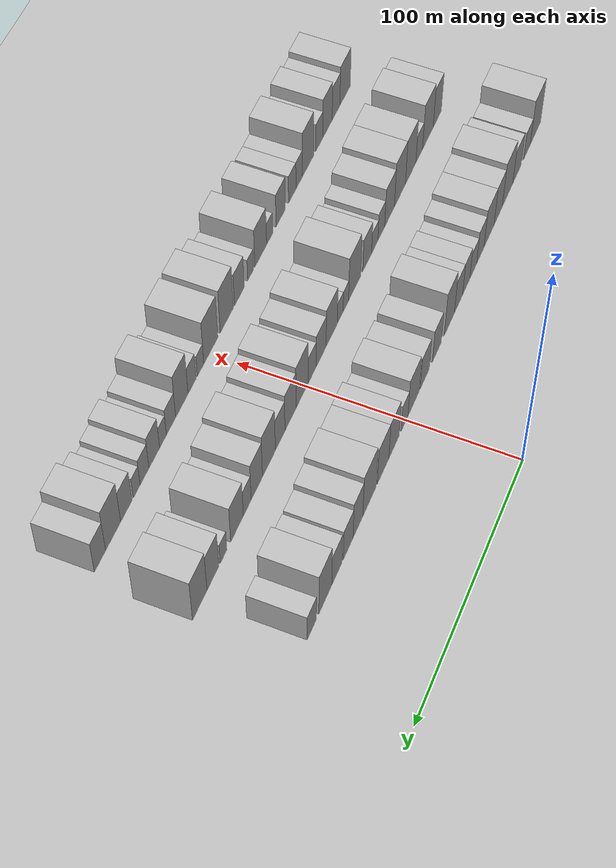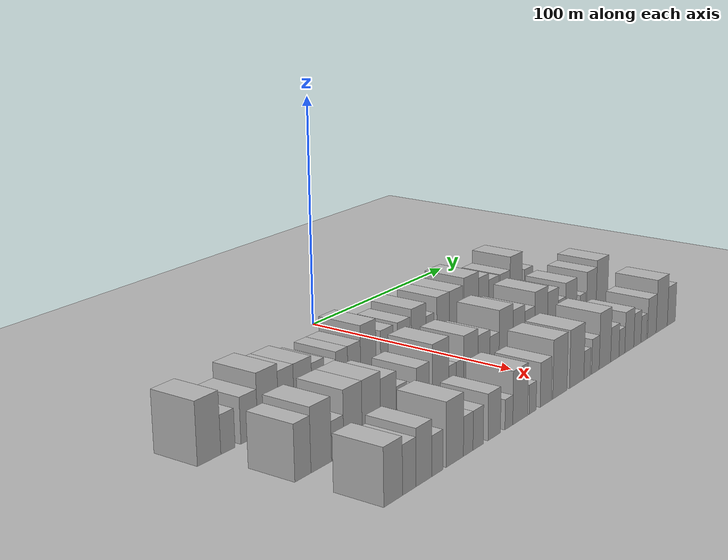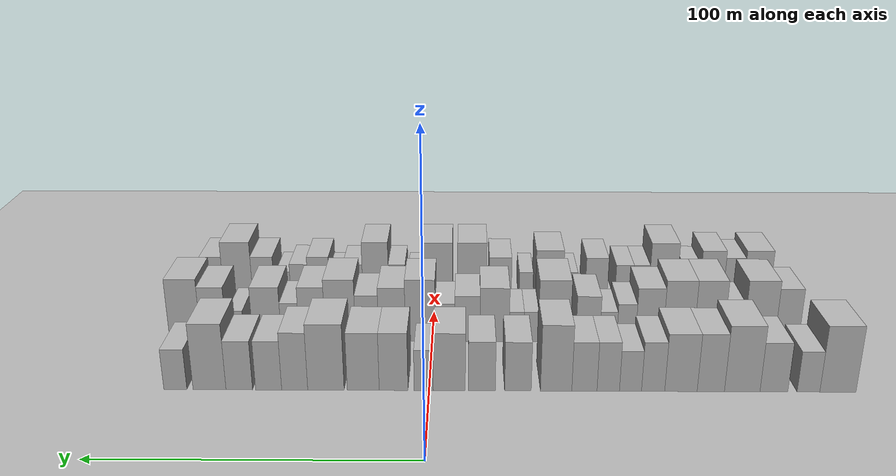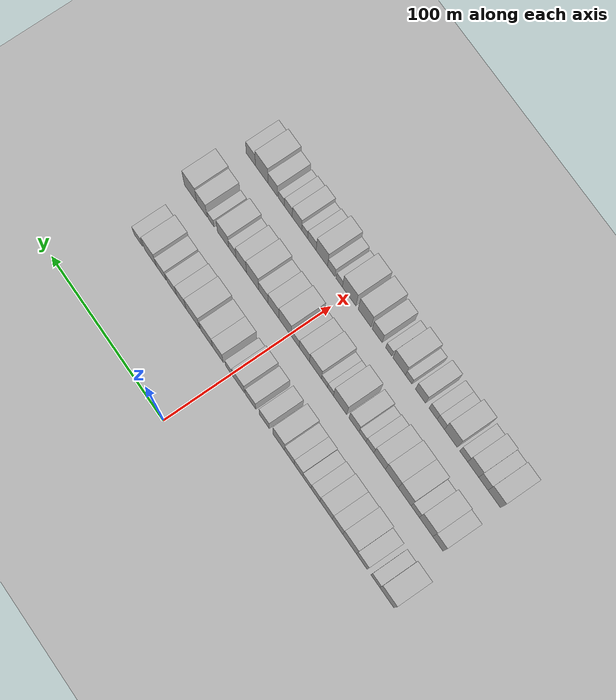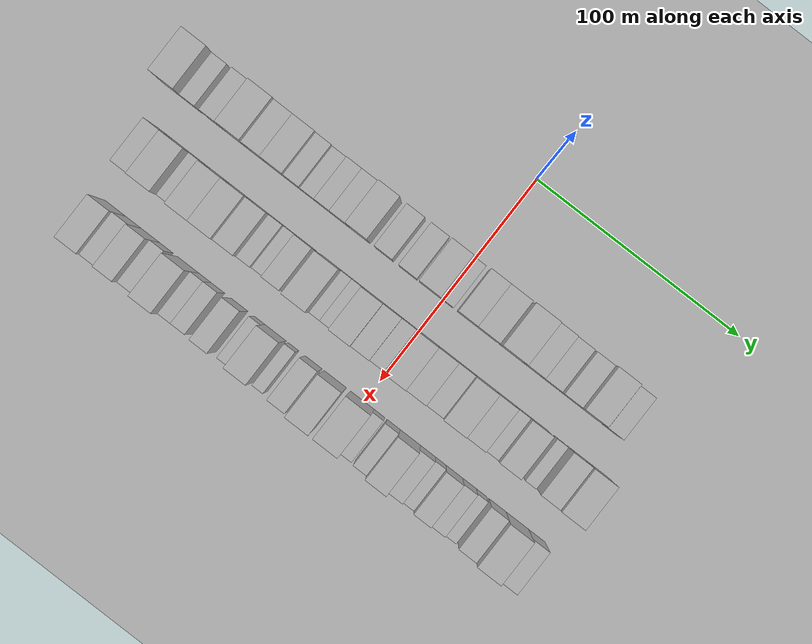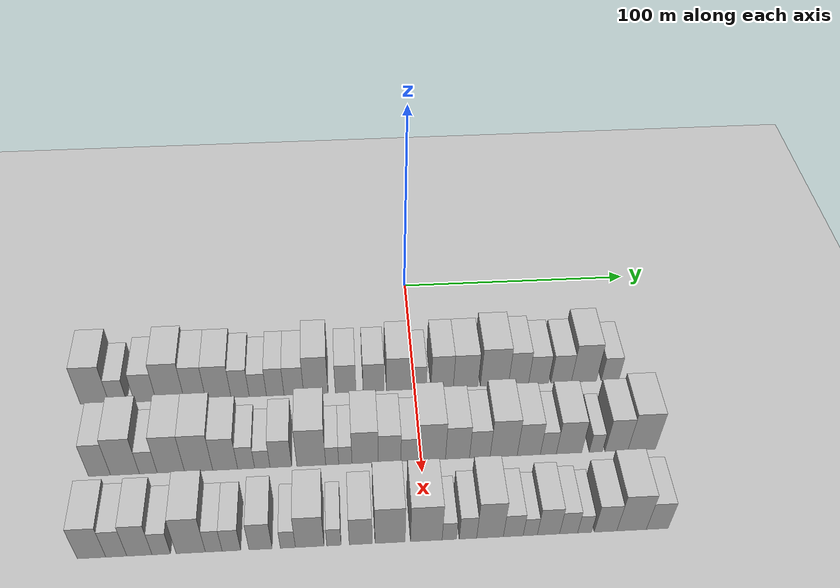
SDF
<sdf version="1.6">
 <world name="default">
  <include><name>ground_plane_1</name><uri>model://HANNAS_ground_plane</uri></include>
  <include>
   <name>ground_plane_2</name>
   <uri>model://HANNAS_ground_plane</uri>
   <pose>100 0 0  0 0 0</pose>
  </include>
  <model name="building_26">
   <static>1</static>
   <pose>50.0000 -131.7145 0 0.000000 0.000000 0.000000</pose>
   <link name="link">
    <pose>0 0 12.00 0 0 0</pose>
    <collision name="collision"><geometry><box><size>20.0000 11.6438 24.0000</size></box></geometry></collision>
    <visual name="visual">
     <cast_shadows>0</cast_shadows>
     <geometry><box><size>20.0000 11.6438 24.0000</size></box></geometry>
     <material>
      <script>
       <uri>model://HANNAS_wall/materials/scripts</uri>
       <uri>model://HANNAS_wall/materials/textures</uri>
       <name>vrc/HANNAS_wall</name>
      </script>
     </material>
    </visual>
   </link>
  </model>
  <model name="building_27">
   <static>1</static>
   <pose>50.0000 -122.2554 0 0.000000 0.000000 0.000000</pose>
   <link name="link">
    <pose>0 0 7.50 0 0 0</pose>
    <collision name="collision"><geometry><box><size>20.0000 7.2743 15.0000</size></box></geometry></collision>
    <visual name="visual">
     <cast_shadows>0</cast_shadows>
     <geometry><box><size>20.0000 7.2743 15.0000</size></box></geometry>
     <material>
      <script>
       <uri>model://HANNAS_wall/materials/scripts</uri>
       <uri>model://HANNAS_wall/materials/textures</uri>
       <name>vrc/HANNAS_wall</name>
      </script>
     </material>
    </visual>
   </link>
  </model>
  <model name="building_28">
   <static>1</static>
   <pose>50.0000 -111.1314 0 0.000000 0.000000 0.000000</pose>
   <link name="link">
    <pose>0 0 9.00 0 0 0</pose>
    <collision name="collision"><geometry><box><size>20.0000 8.9738 18.0000</size></box></geometry></collision>
    <visual name="visual">
     <cast_shadows>0</cast_shadows>
     <geometry><box><size>20.0000 8.9738 18.0000</size></box></geometry>
     <material>
      <script>
       <uri>model://HANNAS_wall/materials/scripts</uri>
       <uri>model://HANNAS_wall/materials/textures</uri>
       <name>vrc/HANNAS_wall</name>
      </script>
     </material>
    </visual>
   </link>
  </model>
  <model name="building_29">
   <static>1</static>
   <pose>50.0000 -100.9214 0 0.000000 0.000000 0.000000</pose>
   <link name="link">
    <pose>0 0 12.00 0 0 0</pose>
    <collision name="collision"><geometry><box><size>20.0000 11.4462 24.0000</size></box></geometry></collision>
    <visual name="visual">
     <cast_shadows>0</cast_shadows>
     <geometry><box><size>20.0000 11.4462 24.0000</size></box></geometry>
     <material>
      <script>
       <uri>model://HANNAS_wall/materials/scripts</uri>
       <uri>model://HANNAS_wall/materials/textures</uri>
       <name>vrc/HANNAS_wall</name>
      </script>
     </material>
    </visual>
   </link>
  </model>
  <model name="building_30">
   <static>1</static>
   <pose>50.0000 -90.8054 0 0.000000 0.000000 0.000000</pose>
   <link name="link">
    <pose>0 0 10.50 0 0 0</pose>
    <collision name="collision"><geometry><box><size>20.0000 8.7860 21.0000</size></box></geometry></collision>
    <visual name="visual">
     <cast_shadows>0</cast_shadows>
     <geometry><box><size>20.0000 8.7860 21.0000</size></box></geometry>
     <material>
      <script>
       <uri>model://HANNAS_wall/materials/scripts</uri>
       <uri>model://HANNAS_wall/materials/textures</uri>
       <name>vrc/HANNAS_wall</name>
      </script>
     </material>
    </visual>
   </link>
  </model>
  <model name="building_31">
   <static>1</static>
   <pose>50.0000 -81.1889 0 0.000000 0.000000 0.000000</pose>
   <link name="link">
    <pose>0 0 10.50 0 0 0</pose>
    <collision name="collision"><geometry><box><size>20.0000 10.4469 21.0000</size></box></geometry></collision>
    <visual name="visual">
     <cast_shadows>0</cast_shadows>
     <geometry><box><size>20.0000 10.4469 21.0000</size></box></geometry>
     <material>
      <script>
       <uri>model://HANNAS_wall/materials/scripts</uri>
       <uri>model://HANNAS_wall/materials/textures</uri>
       <name>vrc/HANNAS_wall</name>
      </script>
     </material>
    </visual>
   </link>
  </model>
  <model name="building_32">
   <static>1</static>
   <pose>50.0000 -72.2218 0 0.000000 0.000000 0.000000</pose>
   <link name="link">
    <pose>0 0 9.00 0 0 0</pose>
    <collision name="collision"><geometry><box><size>20.0000 7.4873 18.0000</size></box></geometry></collision>
    <visual name="visual">
     <cast_shadows>0</cast_shadows>
     <geometry><box><size>20.0000 7.4873 18.0000</size></box></geometry>
     <material>
      <script>
       <uri>model://HANNAS_wall/materials/scripts</uri>
       <uri>model://HANNAS_wall/materials/textures</uri>
       <name>vrc/HANNAS_wall</name>
      </script>
     </material>
    </visual>
   </link>
  </model>
  <model name="building_33">
   <static>1</static>
   <pose>50.0000 -64.9223 0 0.000000 0.000000 0.000000</pose>
   <link name="link">
    <pose>0 0 7.50 0 0 0</pose>
    <collision name="collision"><geometry><box><size>20.0000 7.1118 15.0000</size></box></geometry></collision>
    <visual name="visual">
     <cast_shadows>0</cast_shadows>
     <geometry><box><size>20.0000 7.1118 15.0000</size></box></geometry>
     <material>
      <script>
       <uri>model://HANNAS_wall/materials/scripts</uri>
       <uri>model://HANNAS_wall/materials/textures</uri>
       <name>vrc/HANNAS_wall</name>
      </script>
     </material>
    </visual>
   </link>
  </model>
  <model name="building_34">
   <static>1</static>
   <pose>50.0000 -57.7471 0 0.000000 0.000000 0.000000</pose>
   <link name="link">
    <pose>0 0 9.00 0 0 0</pose>
    <collision name="collision"><geometry><box><size>20.0000 7.2385 18.0000</size></box></geometry></collision>
    <visual name="visual">
     <cast_shadows>0</cast_shadows>
     <geometry><box><size>20.0000 7.2385 18.0000</size></box></geometry>
     <material>
      <script>
       <uri>model://HANNAS_wall/materials/scripts</uri>
       <uri>model://HANNAS_wall/materials/textures</uri>
       <name>vrc/HANNAS_wall</name>
      </script>
     </material>
    </visual>
   </link>
  </model>
  <model name="building_35">
   <static>1</static>
   <pose>50.0000 -50.0649 0 0.000000 0.000000 0.000000</pose>
   <link name="link">
    <pose>0 0 9.00 0 0 0</pose>
    <collision name="collision"><geometry><box><size>20.0000 8.1259 18.0000</size></box></geometry></collision>
    <visual name="visual">
     <cast_shadows>0</cast_shadows>
     <geometry><box><size>20.0000 8.1259 18.0000</size></box></geometry>
     <material>
      <script>
       <uri>model://HANNAS_wall/materials/scripts</uri>
       <uri>model://HANNAS_wall/materials/textures</uri>
       <name>vrc/HANNAS_wall</name>
      </script>
     </material>
    </visual>
   </link>
  </model>
  <model name="building_36">
   <static>1</static>
   <pose>50.0000 -40.9510 0 0.000000 0.000000 0.000000</pose>
   <link name="link">
    <pose>0 0 12.00 0 0 0</pose>
    <collision name="collision"><geometry><box><size>20.0000 10.1020 24.0000</size></box></geometry></collision>
    <visual name="visual">
     <cast_shadows>0</cast_shadows>
     <geometry><box><size>20.0000 10.1020 24.0000</size></box></geometry>
     <material>
      <script>
       <uri>model://HANNAS_wall/materials/scripts</uri>
       <uri>model://HANNAS_wall/materials/textures</uri>
       <name>vrc/HANNAS_wall</name>
      </script>
     </material>
    </visual>
   </link>
  </model>
  <model name="building_37">
   <static>1</static>
   <pose>50.0000 -28.6230 0 0.000000 0.000000 0.000000</pose>
   <link name="link">
    <pose>0 0 9.00 0 0 0</pose>
    <collision name="collision"><geometry><box><size>20.0000 8.5541 18.0000</size></box></geometry></collision>
    <visual name="visual">
     <cast_shadows>0</cast_shadows>
     <geometry><box><size>20.0000 8.5541 18.0000</size></box></geometry>
     <material>
      <script>
       <uri>model://HANNAS_wall/materials/scripts</uri>
       <uri>model://HANNAS_wall/materials/textures</uri>
       <name>vrc/HANNAS_wall</name>
      </script>
     </material>
    </visual>
   </link>
  </model>
  <model name="building_38">
   <static>1</static>
   <pose>50.0000 -16.9877 0 0.000000 0.000000 0.000000</pose>
   <link name="link">
    <pose>0 0 9.00 0 0 0</pose>
    <collision name="collision"><geometry><box><size>20.0000 8.7164 18.0000</size></box></geometry></collision>
    <visual name="visual">
     <cast_shadows>0</cast_shadows>
     <geometry><box><size>20.0000 8.7164 18.0000</size></box></geometry>
     <material>
      <script>
       <uri>model://HANNAS_wall/materials/scripts</uri>
       <uri>model://HANNAS_wall/materials/textures</uri>
       <name>vrc/HANNAS_wall</name>
      </script>
     </material>
    </visual>
   </link>
  </model>
  <model name="building_39">
   <static>1</static>
   <pose>50.0000 -6.4514 0 0.000000 0.000000 0.000000</pose>
   <link name="link">
    <pose>0 0 10.50 0 0 0</pose>
    <collision name="collision"><geometry><box><size>20.0000 10.3563 21.0000</size></box></geometry></collision>
    <visual name="visual">
     <cast_shadows>0</cast_shadows>
     <geometry><box><size>20.0000 10.3563 21.0000</size></box></geometry>
     <material>
      <script>
       <uri>model://HANNAS_wall/materials/scripts</uri>
       <uri>model://HANNAS_wall/materials/textures</uri>
       <name>vrc/HANNAS_wall</name>
      </script>
     </material>
    </visual>
   </link>
  </model>
  <model name="building_40">
   <static>1</static>
   <pose>50.0000 1.8156 0 0.000000 0.000000 0.000000</pose>
   <link name="link">
    <pose>0 0 7.50 0 0 0</pose>
    <collision name="collision"><geometry><box><size>20.0000 6.1777 15.0000</size></box></geometry></collision>
    <visual name="visual">
     <cast_shadows>0</cast_shadows>
     <geometry><box><size>20.0000 6.1777 15.0000</size></box></geometry>
     <material>
      <script>
       <uri>model://HANNAS_wall/materials/scripts</uri>
       <uri>model://HANNAS_wall/materials/textures</uri>
       <name>vrc/HANNAS_wall</name>
      </script>
     </material>
    </visual>
   </link>
  </model>
  <model name="building_41">
   <static>1</static>
   <pose>50.0000 11.5562 0 0.000000 0.000000 0.000000</pose>
   <link name="link">
    <pose>0 0 10.50 0 0 0</pose>
    <collision name="collision"><geometry><box><size>20.0000 9.3035 21.0000</size></box></geometry></collision>
    <visual name="visual">
     <cast_shadows>0</cast_shadows>
     <geometry><box><size>20.0000 9.3035 21.0000</size></box></geometry>
     <material>
      <script>
       <uri>model://HANNAS_wall/materials/scripts</uri>
       <uri>model://HANNAS_wall/materials/textures</uri>
       <name>vrc/HANNAS_wall</name>
      </script>
     </material>
    </visual>
   </link>
  </model>
  <model name="building_42">
   <static>1</static>
   <pose>50.0000 21.3764 0 0.000000 0.000000 0.000000</pose>
   <link name="link">
    <pose>0 0 10.50 0 0 0</pose>
    <collision name="collision"><geometry><box><size>20.0000 10.3369 21.0000</size></box></geometry></collision>
    <visual name="visual">
     <cast_shadows>0</cast_shadows>
     <geometry><box><size>20.0000 10.3369 21.0000</size></box></geometry>
     <material>
      <script>
       <uri>model://HANNAS_wall/materials/scripts</uri>
       <uri>model://HANNAS_wall/materials/textures</uri>
       <name>vrc/HANNAS_wall</name>
      </script>
     </material>
    </visual>
   </link>
  </model>
  <model name="building_43">
   <static>1</static>
   <pose>50.0000 33.4431 0 0.000000 0.000000 0.000000</pose>
   <link name="link">
    <pose>0 0 12.00 0 0 0</pose>
    <collision name="collision"><geometry><box><size>20.0000 11.7965 24.0000</size></box></geometry></collision>
    <visual name="visual">
     <cast_shadows>0</cast_shadows>
     <geometry><box><size>20.0000 11.7965 24.0000</size></box></geometry>
     <material>
      <script>
       <uri>model://HANNAS_wall/materials/scripts</uri>
       <uri>model://HANNAS_wall/materials/textures</uri>
       <name>vrc/HANNAS_wall</name>
      </script>
     </material>
    </visual>
   </link>
  </model>
  <model name="building_44">
   <static>1</static>
   <pose>50.0000 43.5559 0 0.000000 0.000000 0.000000</pose>
   <link name="link">
    <pose>0 0 10.50 0 0 0</pose>
    <collision name="collision"><geometry><box><size>20.0000 8.4291 21.0000</size></box></geometry></collision>
    <visual name="visual">
     <cast_shadows>0</cast_shadows>
     <geometry><box><size>20.0000 8.4291 21.0000</size></box></geometry>
     <material>
      <script>
       <uri>model://HANNAS_wall/materials/scripts</uri>
       <uri>model://HANNAS_wall/materials/textures</uri>
       <name>vrc/HANNAS_wall</name>
      </script>
     </material>
    </visual>
   </link>
  </model>
  <model name="building_45">
   <static>1</static>
   <pose>50.0000 51.9869 0 0.000000 0.000000 0.000000</pose>
   <link name="link">
    <pose>0 0 9.00 0 0 0</pose>
    <collision name="collision"><geometry><box><size>20.0000 8.4329 18.0000</size></box></geometry></collision>
    <visual name="visual">
     <cast_shadows>0</cast_shadows>
     <geometry><box><size>20.0000 8.4329 18.0000</size></box></geometry>
     <material>
      <script>
       <uri>model://HANNAS_wall/materials/scripts</uri>
       <uri>model://HANNAS_wall/materials/textures</uri>
       <name>vrc/HANNAS_wall</name>
      </script>
     </material>
    </visual>
   </link>
  </model>
  <model name="building_46">
   <static>1</static>
   <pose>50.0000 61.5077 0 0.000000 0.000000 0.000000</pose>
   <link name="link">
    <pose>0 0 9.00 0 0 0</pose>
    <collision name="collision"><geometry><box><size>20.0000 8.6087 18.0000</size></box></geometry></collision>
    <visual name="visual">
     <cast_shadows>0</cast_shadows>
     <geometry><box><size>20.0000 8.6087 18.0000</size></box></geometry>
     <material>
      <script>
       <uri>model://HANNAS_wall/materials/scripts</uri>
       <uri>model://HANNAS_wall/materials/textures</uri>
       <name>vrc/HANNAS_wall</name>
      </script>
     </material>
    </visual>
   </link>
  </model>
  <model name="building_47">
   <static>1</static>
   <pose>50.0000 71.1475 0 0.000000 0.000000 0.000000</pose>
   <link name="link">
    <pose>0 0 12.00 0 0 0</pose>
    <collision name="collision"><geometry><box><size>20.0000 10.6708 24.0000</size></box></geometry></collision>
    <visual name="visual">
     <cast_shadows>0</cast_shadows>
     <geometry><box><size>20.0000 10.6708 24.0000</size></box></geometry>
     <material>
      <script>
       <uri>model://HANNAS_wall/materials/scripts</uri>
       <uri>model://HANNAS_wall/materials/textures</uri>
       <name>vrc/HANNAS_wall</name>
      </script>
     </material>
    </visual>
   </link>
  </model>
  <model name="building_48">
   <static>1</static>
   <pose>50.0000 82.2222 0 0.000000 0.000000 0.000000</pose>
   <link name="link">
    <pose>0 0 7.50 0 0 0</pose>
    <collision name="collision"><geometry><box><size>20.0000 7.4786 15.0000</size></box></geometry></collision>
    <visual name="visual">
     <cast_shadows>0</cast_shadows>
     <geometry><box><size>20.0000 7.4786 15.0000</size></box></geometry>
     <material>
      <script>
       <uri>model://HANNAS_wall/materials/scripts</uri>
       <uri>model://HANNAS_wall/materials/textures</uri>
       <name>vrc/HANNAS_wall</name>
      </script>
     </material>
    </visual>
   </link>
  </model>
  <model name="building_103">
   <static>1</static>
   <pose>85.0000 -124.8786 0 0.000000 0.000000 0.000000</pose>
   <link name="link">
    <pose>0 0 10.50 0 0 0</pose>
    <collision name="collision"><geometry><box><size>20.0000 8.4482 21.0000</size></box></geometry></collision>
    <visual name="visual">
     <cast_shadows>0</cast_shadows>
     <geometry><box><size>20.0000 8.4482 21.0000</size></box></geometry>
     <material>
      <script>
       <uri>model://HANNAS_wall/materials/scripts</uri>
       <uri>model://HANNAS_wall/materials/textures</uri>
       <name>vrc/HANNAS_wall</name>
      </script>
     </material>
    </visual>
   </link>
  </model>
  <model name="building_104">
   <static>1</static>
   <pose>85.0000 -115.1177 0 0.000000 0.000000 0.000000</pose>
   <link name="link">
    <pose>0 0 12.00 0 0 0</pose>
    <collision name="collision"><geometry><box><size>20.0000 11.0736 24.0000</size></box></geometry></collision>
    <visual name="visual">
     <cast_shadows>0</cast_shadows>
     <geometry><box><size>20.0000 11.0736 24.0000</size></box></geometry>
     <material>
      <script>
       <uri>model://HANNAS_wall/materials/scripts</uri>
       <uri>model://HANNAS_wall/materials/textures</uri>
       <name>vrc/HANNAS_wall</name>
      </script>
     </material>
    </visual>
   </link>
  </model>
  <model name="building_105">
   <static>1</static>
   <pose>85.0000 -106.1394 0 0.000000 0.000000 0.000000</pose>
   <link name="link">
    <pose>0 0 7.50 0 0 0</pose>
    <collision name="collision"><geometry><box><size>20.0000 6.8830 15.0000</size></box></geometry></collision>
    <visual name="visual">
     <cast_shadows>0</cast_shadows>
     <geometry><box><size>20.0000 6.8830 15.0000</size></box></geometry>
     <material>
      <script>
       <uri>model://HANNAS_wall/materials/scripts</uri>
       <uri>model://HANNAS_wall/materials/textures</uri>
       <name>vrc/HANNAS_wall</name>
      </script>
     </material>
    </visual>
   </link>
  </model>
  <model name="building_106">
   <static>1</static>
   <pose>85.0000 -97.4336 0 0.000000 0.000000 0.000000</pose>
   <link name="link">
    <pose>0 0 12.00 0 0 0</pose>
    <collision name="collision"><geometry><box><size>20.0000 10.5285 24.0000</size></box></geometry></collision>
    <visual name="visual">
     <cast_shadows>0</cast_shadows>
     <geometry><box><size>20.0000 10.5285 24.0000</size></box></geometry>
     <material>
      <script>
       <uri>model://HANNAS_wall/materials/scripts</uri>
       <uri>model://HANNAS_wall/materials/textures</uri>
       <name>vrc/HANNAS_wall</name>
      </script>
     </material>
    </visual>
   </link>
  </model>
  <model name="building_107">
   <static>1</static>
   <pose>85.0000 -86.7280 0 0.000000 0.000000 0.000000</pose>
   <link name="link">
    <pose>0 0 12.00 0 0 0</pose>
    <collision name="collision"><geometry><box><size>20.0000 10.8827 24.0000</size></box></geometry></collision>
    <visual name="visual">
     <cast_shadows>0</cast_shadows>
     <geometry><box><size>20.0000 10.8827 24.0000</size></box></geometry>
     <material>
      <script>
       <uri>model://HANNAS_wall/materials/scripts</uri>
       <uri>model://HANNAS_wall/materials/textures</uri>
       <name>vrc/HANNAS_wall</name>
      </script>
     </material>
    </visual>
   </link>
  </model>
  <model name="building_108">
   <static>1</static>
   <pose>85.0000 -76.4535 0 0.000000 0.000000 0.000000</pose>
   <link name="link">
    <pose>0 0 10.50 0 0 0</pose>
    <collision name="collision"><geometry><box><size>20.0000 9.6663 21.0000</size></box></geometry></collision>
    <visual name="visual">
     <cast_shadows>0</cast_shadows>
     <geometry><box><size>20.0000 9.6663 21.0000</size></box></geometry>
     <material>
      <script>
       <uri>model://HANNAS_wall/materials/scripts</uri>
       <uri>model://HANNAS_wall/materials/textures</uri>
       <name>vrc/HANNAS_wall</name>
      </script>
     </material>
    </visual>
   </link>
  </model>
  <model name="building_109">
   <static>1</static>
   <pose>85.0000 -68.3305 0 0.000000 0.000000 0.000000</pose>
   <link name="link">
    <pose>0 0 7.50 0 0 0</pose>
    <collision name="collision"><geometry><box><size>20.0000 6.5797 15.0000</size></box></geometry></collision>
    <visual name="visual">
     <cast_shadows>0</cast_shadows>
     <geometry><box><size>20.0000 6.5797 15.0000</size></box></geometry>
     <material>
      <script>
       <uri>model://HANNAS_wall/materials/scripts</uri>
       <uri>model://HANNAS_wall/materials/textures</uri>
       <name>vrc/HANNAS_wall</name>
      </script>
     </material>
    </visual>
   </link>
  </model>
  <model name="building_110">
   <static>1</static>
   <pose>85.0000 -62.0493 0 0.000000 0.000000 0.000000</pose>
   <link name="link">
    <pose>0 0 6.00 0 0 0</pose>
    <collision name="collision"><geometry><box><size>20.0000 5.9827 12.0000</size></box></geometry></collision>
    <visual name="visual">
     <cast_shadows>0</cast_shadows>
     <geometry><box><size>20.0000 5.9827 12.0000</size></box></geometry>
     <material>
      <script>
       <uri>model://HANNAS_wall/materials/scripts</uri>
       <uri>model://HANNAS_wall/materials/textures</uri>
       <name>vrc/HANNAS_wall</name>
      </script>
     </material>
    </visual>
   </link>
  </model>
  <model name="building_111">
   <static>1</static>
   <pose>85.0000 -54.8274 0 0.000000 0.000000 0.000000</pose>
   <link name="link">
    <pose>0 0 9.00 0 0 0</pose>
    <collision name="collision"><geometry><box><size>20.0000 8.4611 18.0000</size></box></geometry></collision>
    <visual name="visual">
     <cast_shadows>0</cast_shadows>
     <geometry><box><size>20.0000 8.4611 18.0000</size></box></geometry>
     <material>
      <script>
       <uri>model://HANNAS_wall/materials/scripts</uri>
       <uri>model://HANNAS_wall/materials/textures</uri>
       <name>vrc/HANNAS_wall</name>
      </script>
     </material>
    </visual>
   </link>
  </model>
  <model name="building_112">
   <static>1</static>
   <pose>85.0000 -42.9889 0 0.000000 0.000000 0.000000</pose>
   <link name="link">
    <pose>0 0 12.00 0 0 0</pose>
    <collision name="collision"><geometry><box><size>20.0000 11.2158 24.0000</size></box></geometry></collision>
    <visual name="visual">
     <cast_shadows>0</cast_shadows>
     <geometry><box><size>20.0000 11.2158 24.0000</size></box></geometry>
     <material>
      <script>
       <uri>model://HANNAS_wall/materials/scripts</uri>
       <uri>model://HANNAS_wall/materials/textures</uri>
       <name>vrc/HANNAS_wall</name>
      </script>
     </material>
    </visual>
   </link>
  </model>
  <model name="building_113">
   <static>1</static>
   <pose>85.0000 -34.8346 0 0.000000 0.000000 0.000000</pose>
   <link name="link">
    <pose>0 0 6.00 0 0 0</pose>
    <collision name="collision"><geometry><box><size>20.0000 5.0928 12.0000</size></box></geometry></collision>
    <visual name="visual">
     <cast_shadows>0</cast_shadows>
     <geometry><box><size>20.0000 5.0928 12.0000</size></box></geometry>
     <material>
      <script>
       <uri>model://HANNAS_wall/materials/scripts</uri>
       <uri>model://HANNAS_wall/materials/textures</uri>
       <name>vrc/HANNAS_wall</name>
      </script>
     </material>
    </visual>
   </link>
  </model>
  <model name="building_114">
   <static>1</static>
   <pose>85.0000 -29.6927 0 0.000000 0.000000 0.000000</pose>
   <link name="link">
    <pose>0 0 6.00 0 0 0</pose>
    <collision name="collision"><geometry><box><size>20.0000 5.1912 12.0000</size></box></geometry></collision>
    <visual name="visual">
     <cast_shadows>0</cast_shadows>
     <geometry><box><size>20.0000 5.1912 12.0000</size></box></geometry>
     <material>
      <script>
       <uri>model://HANNAS_wall/materials/scripts</uri>
       <uri>model://HANNAS_wall/materials/textures</uri>
       <name>vrc/HANNAS_wall</name>
      </script>
     </material>
    </visual>
   </link>
  </model>
  <model name="building_115">
   <static>1</static>
   <pose>85.0000 -21.9603 0 0.000000 0.000000 0.000000</pose>
   <link name="link">
    <pose>0 0 10.50 0 0 0</pose>
    <collision name="collision"><geometry><box><size>20.0000 10.2736 21.0000</size></box></geometry></collision>
    <visual name="visual">
     <cast_shadows>0</cast_shadows>
     <geometry><box><size>20.0000 10.2736 21.0000</size></box></geometry>
     <material>
      <script>
       <uri>model://HANNAS_wall/materials/scripts</uri>
       <uri>model://HANNAS_wall/materials/textures</uri>
       <name>vrc/HANNAS_wall</name>
      </script>
     </material>
    </visual>
   </link>
  </model>
  <model name="building_116">
   <static>1</static>
   <pose>85.0000 -12.3924 0 0.000000 0.000000 0.000000</pose>
   <link name="link">
    <pose>0 0 9.00 0 0 0</pose>
    <collision name="collision"><geometry><box><size>20.0000 8.8622 18.0000</size></box></geometry></collision>
    <visual name="visual">
     <cast_shadows>0</cast_shadows>
     <geometry><box><size>20.0000 8.8622 18.0000</size></box></geometry>
     <material>
      <script>
       <uri>model://HANNAS_wall/materials/scripts</uri>
       <uri>model://HANNAS_wall/materials/textures</uri>
       <name>vrc/HANNAS_wall</name>
      </script>
     </material>
    </visual>
   </link>
  </model>
  <model name="building_117">
   <static>1</static>
   <pose>85.0000 -4.4993 0 0.000000 0.000000 0.000000</pose>
   <link name="link">
    <pose>0 0 7.50 0 0 0</pose>
    <collision name="collision"><geometry><box><size>20.0000 6.9240 15.0000</size></box></geometry></collision>
    <visual name="visual">
     <cast_shadows>0</cast_shadows>
     <geometry><box><size>20.0000 6.9240 15.0000</size></box></geometry>
     <material>
      <script>
       <uri>model://HANNAS_wall/materials/scripts</uri>
       <uri>model://HANNAS_wall/materials/textures</uri>
       <name>vrc/HANNAS_wall</name>
      </script>
     </material>
    </visual>
   </link>
  </model>
  <model name="building_118">
   <static>1</static>
   <pose>85.0000 4.2602 0 0.000000 0.000000 0.000000</pose>
   <link name="link">
    <pose>0 0 12.00 0 0 0</pose>
    <collision name="collision"><geometry><box><size>20.0000 10.5949 24.0000</size></box></geometry></collision>
    <visual name="visual">
     <cast_shadows>0</cast_shadows>
     <geometry><box><size>20.0000 10.5949 24.0000</size></box></geometry>
     <material>
      <script>
       <uri>model://HANNAS_wall/materials/scripts</uri>
       <uri>model://HANNAS_wall/materials/textures</uri>
       <name>vrc/HANNAS_wall</name>
      </script>
     </material>
    </visual>
   </link>
  </model>
  <model name="building_119">
   <static>1</static>
   <pose>85.0000 14.2905 0 0.000000 0.000000 0.000000</pose>
   <link name="link">
    <pose>0 0 10.50 0 0 0</pose>
    <collision name="collision"><geometry><box><size>20.0000 9.4658 21.0000</size></box></geometry></collision>
    <visual name="visual">
     <cast_shadows>0</cast_shadows>
     <geometry><box><size>20.0000 9.4658 21.0000</size></box></geometry>
     <material>
      <script>
       <uri>model://HANNAS_wall/materials/scripts</uri>
       <uri>model://HANNAS_wall/materials/textures</uri>
       <name>vrc/HANNAS_wall</name>
      </script>
     </material>
    </visual>
   </link>
  </model>
  <model name="building_120">
   <static>1</static>
   <pose>85.0000 23.0882 0 0.000000 0.000000 0.000000</pose>
   <link name="link">
    <pose>0 0 9.00 0 0 0</pose>
    <collision name="collision"><geometry><box><size>20.0000 8.1296 18.0000</size></box></geometry></collision>
    <visual name="visual">
     <cast_shadows>0</cast_shadows>
     <geometry><box><size>20.0000 8.1296 18.0000</size></box></geometry>
     <material>
      <script>
       <uri>model://HANNAS_wall/materials/scripts</uri>
       <uri>model://HANNAS_wall/materials/textures</uri>
       <name>vrc/HANNAS_wall</name>
      </script>
     </material>
    </visual>
   </link>
  </model>
  <model name="building_121">
   <static>1</static>
   <pose>85.0000 32.5141 0 0.000000 0.000000 0.000000</pose>
   <link name="link">
    <pose>0 0 12.00 0 0 0</pose>
    <collision name="collision"><geometry><box><size>20.0000 10.7223 24.0000</size></box></geometry></collision>
    <visual name="visual">
     <cast_shadows>0</cast_shadows>
     <geometry><box><size>20.0000 10.7223 24.0000</size></box></geometry>
     <material>
      <script>
       <uri>model://HANNAS_wall/materials/scripts</uri>
       <uri>model://HANNAS_wall/materials/textures</uri>
       <name>vrc/HANNAS_wall</name>
      </script>
     </material>
    </visual>
   </link>
  </model>
  <model name="building_122">
   <static>1</static>
   <pose>85.0000 42.4765 0 0.000000 0.000000 0.000000</pose>
   <link name="link">
    <pose>0 0 10.50 0 0 0</pose>
    <collision name="collision"><geometry><box><size>20.0000 9.2026 21.0000</size></box></geometry></collision>
    <visual name="visual">
     <cast_shadows>0</cast_shadows>
     <geometry><box><size>20.0000 9.2026 21.0000</size></box></geometry>
     <material>
      <script>
       <uri>model://HANNAS_wall/materials/scripts</uri>
       <uri>model://HANNAS_wall/materials/textures</uri>
       <name>vrc/HANNAS_wall</name>
      </script>
     </material>
    </visual>
   </link>
  </model>
  <model name="building_123">
   <static>1</static>
   <pose>85.0000 50.2540 0 0.000000 0.000000 0.000000</pose>
   <link name="link">
    <pose>0 0 7.50 0 0 0</pose>
    <collision name="collision"><geometry><box><size>20.0000 6.3524 15.0000</size></box></geometry></collision>
    <visual name="visual">
     <cast_shadows>0</cast_shadows>
     <geometry><box><size>20.0000 6.3524 15.0000</size></box></geometry>
     <material>
      <script>
       <uri>model://HANNAS_wall/materials/scripts</uri>
       <uri>model://HANNAS_wall/materials/textures</uri>
       <name>vrc/HANNAS_wall</name>
      </script>
     </material>
    </visual>
   </link>
  </model>
  <model name="building_124">
   <static>1</static>
   <pose>85.0000 58.4832 0 0.000000 0.000000 0.000000</pose>
   <link name="link">
    <pose>0 0 10.50 0 0 0</pose>
    <collision name="collision"><geometry><box><size>20.0000 10.1061 21.0000</size></box></geometry></collision>
    <visual name="visual">
     <cast_shadows>0</cast_shadows>
     <geometry><box><size>20.0000 10.1061 21.0000</size></box></geometry>
     <material>
      <script>
       <uri>model://HANNAS_wall/materials/scripts</uri>
       <uri>model://HANNAS_wall/materials/textures</uri>
       <name>vrc/HANNAS_wall</name>
      </script>
     </material>
    </visual>
   </link>
  </model>
  <model name="building_125">
   <static>1</static>
   <pose>85.0000 69.1586 0 0.000000 0.000000 0.000000</pose>
   <link name="link">
    <pose>0 0 6.00 0 0 0</pose>
    <collision name="collision"><geometry><box><size>20.0000 5.2445 12.0000</size></box></geometry></collision>
    <visual name="visual">
     <cast_shadows>0</cast_shadows>
     <geometry><box><size>20.0000 5.2445 12.0000</size></box></geometry>
     <material>
      <script>
       <uri>model://HANNAS_wall/materials/scripts</uri>
       <uri>model://HANNAS_wall/materials/textures</uri>
       <name>vrc/HANNAS_wall</name>
      </script>
     </material>
    </visual>
   </link>
  </model>
  <model name="building_126">
   <static>1</static>
   <pose>85.0000 77.3623 0 0.000000 0.000000 0.000000</pose>
   <link name="link">
    <pose>0 0 10.50 0 0 0</pose>
    <collision name="collision"><geometry><box><size>20.0000 9.1629 21.0000</size></box></geometry></collision>
    <visual name="visual">
     <cast_shadows>0</cast_shadows>
     <geometry><box><size>20.0000 9.1629 21.0000</size></box></geometry>
     <material>
      <script>
       <uri>model://HANNAS_wall/materials/scripts</uri>
       <uri>model://HANNAS_wall/materials/textures</uri>
       <name>vrc/HANNAS_wall</name>
      </script>
     </material>
    </visual>
   </link>
  </model>
  <model name="building_127">
   <static>1</static>
   <pose>85.0000 87.4728 0 0.000000 0.000000 0.000000</pose>
   <link name="link">
    <pose>0 0 12.00 0 0 0</pose>
    <collision name="collision"><geometry><box><size>20.0000 11.0581 24.0000</size></box></geometry></collision>
    <visual name="visual">
     <cast_shadows>0</cast_shadows>
     <geometry><box><size>20.0000 11.0581 24.0000</size></box></geometry>
     <material>
      <script>
       <uri>model://HANNAS_wall/materials/scripts</uri>
       <uri>model://HANNAS_wall/materials/textures</uri>
       <name>vrc/HANNAS_wall</name>
      </script>
     </material>
    </visual>
   </link>
  </model>
  <model name="building_172">
   <static>1</static>
   <pose>120.0000 -122.8809 0 0.000000 0.000000 0.000000</pose>
   <link name="link">
    <pose>0 0 10.50 0 0 0</pose>
    <collision name="collision"><geometry><box><size>20.0000 10.2759 21.0000</size></box></geometry></collision>
    <visual name="visual">
     <cast_shadows>0</cast_shadows>
     <geometry><box><size>20.0000 10.2759 21.0000</size></box></geometry>
     <material>
      <script>
       <uri>model://HANNAS_wall/materials/scripts</uri>
       <uri>model://HANNAS_wall/materials/textures</uri>
       <name>vrc/HANNAS_wall</name>
      </script>
     </material>
    </visual>
   </link>
  </model>
  <model name="building_173">
   <static>1</static>
   <pose>120.0000 -113.9500 0 0.000000 0.000000 0.000000</pose>
   <link name="link">
    <pose>0 0 9.00 0 0 0</pose>
    <collision name="collision"><geometry><box><size>20.0000 7.5859 18.0000</size></box></geometry></collision>
    <visual name="visual">
     <cast_shadows>0</cast_shadows>
     <geometry><box><size>20.0000 7.5859 18.0000</size></box></geometry>
     <material>
      <script>
       <uri>model://HANNAS_wall/materials/scripts</uri>
       <uri>model://HANNAS_wall/materials/textures</uri>
       <name>vrc/HANNAS_wall</name>
      </script>
     </material>
    </visual>
   </link>
  </model>
  <model name="building_174">
   <static>1</static>
   <pose>120.0000 -105.6037 0 0.000000 0.000000 0.000000</pose>
   <link name="link">
    <pose>0 0 10.50 0 0 0</pose>
    <collision name="collision"><geometry><box><size>20.0000 9.1066 21.0000</size></box></geometry></collision>
    <visual name="visual">
     <cast_shadows>0</cast_shadows>
     <geometry><box><size>20.0000 9.1066 21.0000</size></box></geometry>
     <material>
      <script>
       <uri>model://HANNAS_wall/materials/scripts</uri>
       <uri>model://HANNAS_wall/materials/textures</uri>
       <name>vrc/HANNAS_wall</name>
      </script>
     </material>
    </visual>
   </link>
  </model>
  <model name="building_175">
   <static>1</static>
   <pose>120.0000 -97.6898 0 0.000000 0.000000 0.000000</pose>
   <link name="link">
    <pose>0 0 7.50 0 0 0</pose>
    <collision name="collision"><geometry><box><size>20.0000 6.7212 15.0000</size></box></geometry></collision>
    <visual name="visual">
     <cast_shadows>0</cast_shadows>
     <geometry><box><size>20.0000 6.7212 15.0000</size></box></geometry>
     <material>
      <script>
       <uri>model://HANNAS_wall/materials/scripts</uri>
       <uri>model://HANNAS_wall/materials/textures</uri>
       <name>vrc/HANNAS_wall</name>
      </script>
     </material>
    </visual>
   </link>
  </model>
  <model name="building_176">
   <static>1</static>
   <pose>120.0000 -87.0308 0 0.000000 0.000000 0.000000</pose>
   <link name="link">
    <pose>0 0 12.00 0 0 0</pose>
    <collision name="collision"><geometry><box><size>20.0000 10.5968 24.0000</size></box></geometry></collision>
    <visual name="visual">
     <cast_shadows>0</cast_shadows>
     <geometry><box><size>20.0000 10.5968 24.0000</size></box></geometry>
     <material>
      <script>
       <uri>model://HANNAS_wall/materials/scripts</uri>
       <uri>model://HANNAS_wall/materials/textures</uri>
       <name>vrc/HANNAS_wall</name>
      </script>
     </material>
    </visual>
   </link>
  </model>
  <model name="building_177">
   <static>1</static>
   <pose>120.0000 -78.6923 0 0.000000 0.000000 0.000000</pose>
   <link name="link">
    <pose>0 0 7.50 0 0 0</pose>
    <collision name="collision"><geometry><box><size>20.0000 6.0803 15.0000</size></box></geometry></collision>
    <visual name="visual">
     <cast_shadows>0</cast_shadows>
     <geometry><box><size>20.0000 6.0803 15.0000</size></box></geometry>
     <material>
      <script>
       <uri>model://HANNAS_wall/materials/scripts</uri>
       <uri>model://HANNAS_wall/materials/textures</uri>
       <name>vrc/HANNAS_wall</name>
      </script>
     </material>
    </visual>
   </link>
  </model>
  <model name="building_178">
   <static>1</static>
   <pose>120.0000 -72.2662 0 0.000000 0.000000 0.000000</pose>
   <link name="link">
    <pose>0 0 7.50 0 0 0</pose>
    <collision name="collision"><geometry><box><size>20.0000 6.7717 15.0000</size></box></geometry></collision>
    <visual name="visual">
     <cast_shadows>0</cast_shadows>
     <geometry><box><size>20.0000 6.7717 15.0000</size></box></geometry>
     <material>
      <script>
       <uri>model://HANNAS_wall/materials/scripts</uri>
       <uri>model://HANNAS_wall/materials/textures</uri>
       <name>vrc/HANNAS_wall</name>
      </script>
     </material>
    </visual>
   </link>
  </model>
  <model name="building_179">
   <static>1</static>
   <pose>120.0000 -61.6664 0 0.000000 0.000000 0.000000</pose>
   <link name="link">
    <pose>0 0 9.00 0 0 0</pose>
    <collision name="collision"><geometry><box><size>20.0000 8.4279 18.0000</size></box></geometry></collision>
    <visual name="visual">
     <cast_shadows>0</cast_shadows>
     <geometry><box><size>20.0000 8.4279 18.0000</size></box></geometry>
     <material>
      <script>
       <uri>model://HANNAS_wall/materials/scripts</uri>
       <uri>model://HANNAS_wall/materials/textures</uri>
       <name>vrc/HANNAS_wall</name>
      </script>
     </material>
    </visual>
   </link>
  </model>
  <model name="building_180">
   <static>1</static>
   <pose>120.0000 -51.7146 0 0.000000 0.000000 0.000000</pose>
   <link name="link">
    <pose>0 0 6.00 0 0 0</pose>
    <collision name="collision"><geometry><box><size>20.0000 5.4758 12.0000</size></box></geometry></collision>
    <visual name="visual">
     <cast_shadows>0</cast_shadows>
     <geometry><box><size>20.0000 5.4758 12.0000</size></box></geometry>
     <material>
      <script>
       <uri>model://HANNAS_wall/materials/scripts</uri>
       <uri>model://HANNAS_wall/materials/textures</uri>
       <name>vrc/HANNAS_wall</name>
      </script>
     </material>
    </visual>
   </link>
  </model>
  <model name="building_181">
   <static>1</static>
   <pose>120.0000 -43.7286 0 0.000000 0.000000 0.000000</pose>
   <link name="link">
    <pose>0 0 10.50 0 0 0</pose>
    <collision name="collision"><geometry><box><size>20.0000 10.4962 21.0000</size></box></geometry></collision>
    <visual name="visual">
     <cast_shadows>0</cast_shadows>
     <geometry><box><size>20.0000 10.4962 21.0000</size></box></geometry>
     <material>
      <script>
       <uri>model://HANNAS_wall/materials/scripts</uri>
       <uri>model://HANNAS_wall/materials/textures</uri>
       <name>vrc/HANNAS_wall</name>
      </script>
     </material>
    </visual>
   </link>
  </model>
  <model name="building_182">
   <static>1</static>
   <pose>120.0000 -34.8590 0 0.000000 0.000000 0.000000</pose>
   <link name="link">
    <pose>0 0 6.00 0 0 0</pose>
    <collision name="collision"><geometry><box><size>20.0000 5.2428 12.0000</size></box></geometry></collision>
    <visual name="visual">
     <cast_shadows>0</cast_shadows>
     <geometry><box><size>20.0000 5.2428 12.0000</size></box></geometry>
     <material>
      <script>
       <uri>model://HANNAS_wall/materials/scripts</uri>
       <uri>model://HANNAS_wall/materials/textures</uri>
       <name>vrc/HANNAS_wall</name>
      </script>
     </material>
    </visual>
   </link>
  </model>
  <model name="building_183">
   <static>1</static>
   <pose>120.0000 -25.0066 0 0.000000 0.000000 0.000000</pose>
   <link name="link">
    <pose>0 0 9.00 0 0 0</pose>
    <collision name="collision"><geometry><box><size>20.0000 8.4621 18.0000</size></box></geometry></collision>
    <visual name="visual">
     <cast_shadows>0</cast_shadows>
     <geometry><box><size>20.0000 8.4621 18.0000</size></box></geometry>
     <material>
      <script>
       <uri>model://HANNAS_wall/materials/scripts</uri>
       <uri>model://HANNAS_wall/materials/textures</uri>
       <name>vrc/HANNAS_wall</name>
      </script>
     </material>
    </visual>
   </link>
  </model>
  <model name="building_184">
   <static>1</static>
   <pose>120.0000 -14.2489 0 0.000000 0.000000 0.000000</pose>
   <link name="link">
    <pose>0 0 12.00 0 0 0</pose>
    <collision name="collision"><geometry><box><size>20.0000 11.0534 24.0000</size></box></geometry></collision>
    <visual name="visual">
     <cast_shadows>0</cast_shadows>
     <geometry><box><size>20.0000 11.0534 24.0000</size></box></geometry>
     <material>
      <script>
       <uri>model://HANNAS_wall/materials/scripts</uri>
       <uri>model://HANNAS_wall/materials/textures</uri>
       <name>vrc/HANNAS_wall</name>
      </script>
     </material>
    </visual>
   </link>
  </model>
  <model name="building_185">
   <static>1</static>
   <pose>120.0000 -0.9003 0 0.000000 0.000000 0.000000</pose>
   <link name="link">
    <pose>0 0 12.00 0 0 0</pose>
    <collision name="collision"><geometry><box><size>20.0000 11.6438 24.0000</size></box></geometry></collision>
    <visual name="visual">
     <cast_shadows>0</cast_shadows>
     <geometry><box><size>20.0000 11.6438 24.0000</size></box></geometry>
     <material>
      <script>
       <uri>model://HANNAS_wall/materials/scripts</uri>
       <uri>model://HANNAS_wall/materials/textures</uri>
       <name>vrc/HANNAS_wall</name>
      </script>
     </material>
    </visual>
   </link>
  </model>
  <model name="building_186">
   <static>1</static>
   <pose>120.0000 7.5963 0 0.000000 0.000000 0.000000</pose>
   <link name="link">
    <pose>0 0 6.00 0 0 0</pose>
    <collision name="collision"><geometry><box><size>20.0000 5.3492 12.0000</size></box></geometry></collision>
    <visual name="visual">
     <cast_shadows>0</cast_shadows>
     <geometry><box><size>20.0000 5.3492 12.0000</size></box></geometry>
     <material>
      <script>
       <uri>model://HANNAS_wall/materials/scripts</uri>
       <uri>model://HANNAS_wall/materials/textures</uri>
       <name>vrc/HANNAS_wall</name>
      </script>
     </material>
    </visual>
   </link>
  </model>
  <model name="building_187">
   <static>1</static>
   <pose>120.0000 14.4896 0 0.000000 0.000000 0.000000</pose>
   <link name="link">
    <pose>0 0 7.50 0 0 0</pose>
    <collision name="collision"><geometry><box><size>20.0000 6.4374 15.0000</size></box></geometry></collision>
    <visual name="visual">
     <cast_shadows>0</cast_shadows>
     <geometry><box><size>20.0000 6.4374 15.0000</size></box></geometry>
     <material>
      <script>
       <uri>model://HANNAS_wall/materials/scripts</uri>
       <uri>model://HANNAS_wall/materials/textures</uri>
       <name>vrc/HANNAS_wall</name>
      </script>
     </material>
    </visual>
   </link>
  </model>
  <model name="building_188">
   <static>1</static>
   <pose>120.0000 22.6671 0 0.000000 0.000000 0.000000</pose>
   <link name="link">
    <pose>0 0 12.00 0 0 0</pose>
    <collision name="collision"><geometry><box><size>20.0000 9.9176 24.0000</size></box></geometry></collision>
    <visual name="visual">
     <cast_shadows>0</cast_shadows>
     <geometry><box><size>20.0000 9.9176 24.0000</size></box></geometry>
     <material>
      <script>
       <uri>model://HANNAS_wall/materials/scripts</uri>
       <uri>model://HANNAS_wall/materials/textures</uri>
       <name>vrc/HANNAS_wall</name>
      </script>
     </material>
    </visual>
   </link>
  </model>
  <model name="building_189">
   <static>1</static>
   <pose>120.0000 31.3139 0 0.000000 0.000000 0.000000</pose>
   <link name="link">
    <pose>0 0 7.50 0 0 0</pose>
    <collision name="collision"><geometry><box><size>20.0000 7.3759 15.0000</size></box></geometry></collision>
    <visual name="visual">
     <cast_shadows>0</cast_shadows>
     <geometry><box><size>20.0000 7.3759 15.0000</size></box></geometry>
     <material>
      <script>
       <uri>model://HANNAS_wall/materials/scripts</uri>
       <uri>model://HANNAS_wall/materials/textures</uri>
       <name>vrc/HANNAS_wall</name>
      </script>
     </material>
    </visual>
   </link>
  </model>
  <model name="building_190">
   <static>1</static>
   <pose>120.0000 37.6358 0 0.000000 0.000000 0.000000</pose>
   <link name="link">
    <pose>0 0 6.00 0 0 0</pose>
    <collision name="collision"><geometry><box><size>20.0000 5.2679 12.0000</size></box></geometry></collision>
    <visual name="visual">
     <cast_shadows>0</cast_shadows>
     <geometry><box><size>20.0000 5.2679 12.0000</size></box></geometry>
     <material>
      <script>
       <uri>model://HANNAS_wall/materials/scripts</uri>
       <uri>model://HANNAS_wall/materials/textures</uri>
       <name>vrc/HANNAS_wall</name>
      </script>
     </material>
    </visual>
   </link>
  </model>
  <model name="building_191">
   <static>1</static>
   <pose>120.0000 44.4134 0 0.000000 0.000000 0.000000</pose>
   <link name="link">
    <pose>0 0 9.00 0 0 0</pose>
    <collision name="collision"><geometry><box><size>20.0000 8.2873 18.0000</size></box></geometry></collision>
    <visual name="visual">
     <cast_shadows>0</cast_shadows>
     <geometry><box><size>20.0000 8.2873 18.0000</size></box></geometry>
     <material>
      <script>
       <uri>model://HANNAS_wall/materials/scripts</uri>
       <uri>model://HANNAS_wall/materials/textures</uri>
       <name>vrc/HANNAS_wall</name>
      </script>
     </material>
    </visual>
   </link>
  </model>
  <model name="building_192">
   <static>1</static>
   <pose>120.0000 51.9278 0 0.000000 0.000000 0.000000</pose>
   <link name="link">
    <pose>0 0 7.50 0 0 0</pose>
    <collision name="collision"><geometry><box><size>20.0000 6.7415 15.0000</size></box></geometry></collision>
    <visual name="visual">
     <cast_shadows>0</cast_shadows>
     <geometry><box><size>20.0000 6.7415 15.0000</size></box></geometry>
     <material>
      <script>
       <uri>model://HANNAS_wall/materials/scripts</uri>
       <uri>model://HANNAS_wall/materials/textures</uri>
       <name>vrc/HANNAS_wall</name>
      </script>
     </material>
    </visual>
   </link>
  </model>
  <model name="building_193">
   <static>1</static>
   <pose>120.0000 57.9097 0 0.000000 0.000000 0.000000</pose>
   <link name="link">
    <pose>0 0 6.00 0 0 0</pose>
    <collision name="collision"><geometry><box><size>20.0000 5.2223 12.0000</size></box></geometry></collision>
    <visual name="visual">
     <cast_shadows>0</cast_shadows>
     <geometry><box><size>20.0000 5.2223 12.0000</size></box></geometry>
     <material>
      <script>
       <uri>model://HANNAS_wall/materials/scripts</uri>
       <uri>model://HANNAS_wall/materials/textures</uri>
       <name>vrc/HANNAS_wall</name>
      </script>
     </material>
    </visual>
   </link>
  </model>
  <model name="building_194">
   <static>1</static>
   <pose>120.0000 65.7244 0 0.000000 0.000000 0.000000</pose>
   <link name="link">
    <pose>0 0 9.00 0 0 0</pose>
    <collision name="collision"><geometry><box><size>20.0000 8.4071 18.0000</size></box></geometry></collision>
    <visual name="visual">
     <cast_shadows>0</cast_shadows>
     <geometry><box><size>20.0000 8.4071 18.0000</size></box></geometry>
     <material>
      <script>
       <uri>model://HANNAS_wall/materials/scripts</uri>
       <uri>model://HANNAS_wall/materials/textures</uri>
       <name>vrc/HANNAS_wall</name>
      </script>
     </material>
    </visual>
   </link>
  </model>
  <model name="building_195">
   <static>1</static>
   <pose>120.0000 75.4898 0 0.000000 0.000000 0.000000</pose>
   <link name="link">
    <pose>0 0 12.00 0 0 0</pose>
    <collision name="collision"><geometry><box><size>20.0000 11.1236 24.0000</size></box></geometry></collision>
    <visual name="visual">
     <cast_shadows>0</cast_shadows>
     <geometry><box><size>20.0000 11.1236 24.0000</size></box></geometry>
     <material>
      <script>
       <uri>model://HANNAS_wall/materials/scripts</uri>
       <uri>model://HANNAS_wall/materials/textures</uri>
       <name>vrc/HANNAS_wall</name>
      </script>
     </material>
    </visual>
   </link>
  </model>
  <model name="building_196">
   <static>1</static>
   <pose>120.0000 85.1413 0 0.000000 0.000000 0.000000</pose>
   <link name="link">
    <pose>0 0 9.00 0 0 0</pose>
    <collision name="collision"><geometry><box><size>20.0000 8.1795 18.0000</size></box></geometry></collision>
    <visual name="visual">
     <cast_shadows>0</cast_shadows>
     <geometry><box><size>20.0000 8.1795 18.0000</size></box></geometry>
     <material>
      <script>
       <uri>model://HANNAS_wall/materials/scripts</uri>
       <uri>model://HANNAS_wall/materials/textures</uri>
       <name>vrc/HANNAS_wall</name>
      </script>
     </material>
    </visual>
   </link>
  </model>
 </world>
</sdf>
